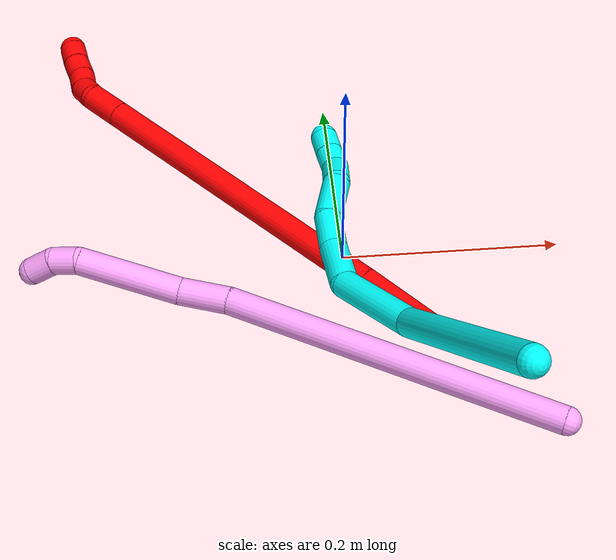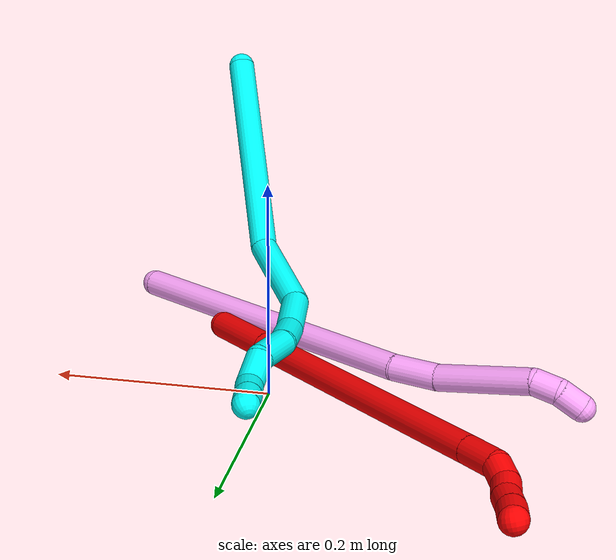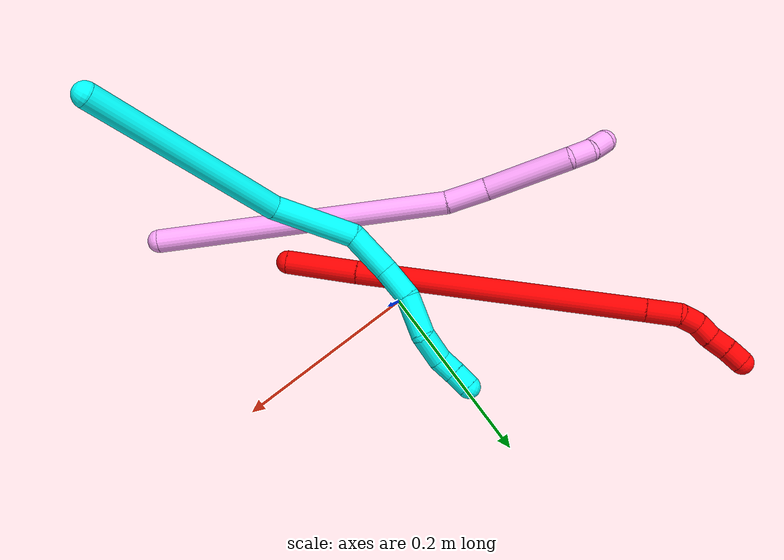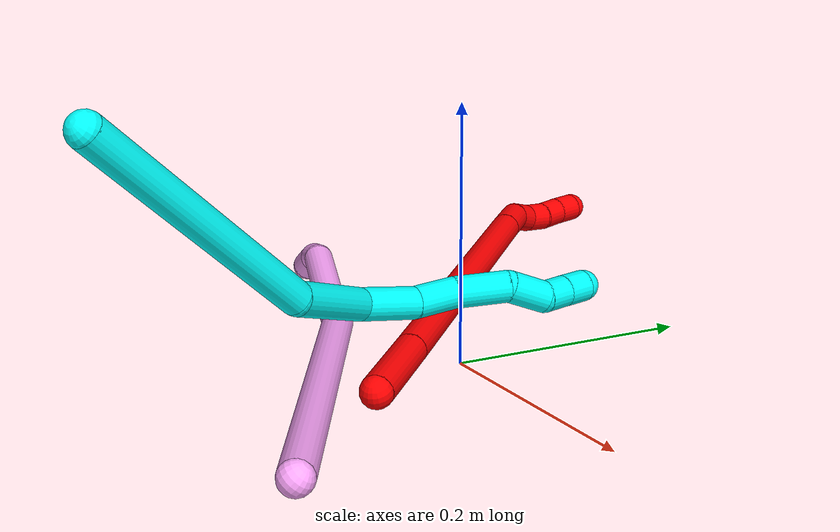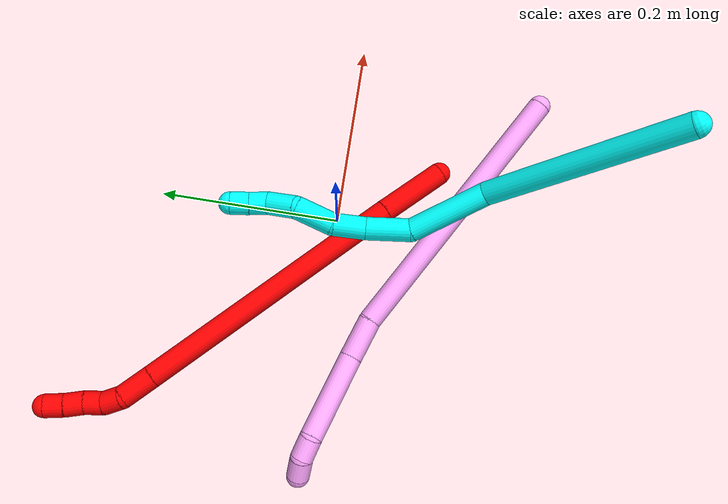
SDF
<sdf version="1.7">
 <world name="default">
  <model name="2">
   <static>0</static>
   <link name="2">
    <collision name="collision-cylinder-e_1_1_4">
     <pose>-0.014885 0.032686 0.012403 -1.20812 -0.402538 0.279772</pose>
     <geometry><cylinder><radius>0.0125</radius><length>0.075994</length></cylinder></geometry>
     <surface>
      <friction><ode><mu>1.16</mu><mu2>1.16</mu2><slip1>0</slip1><slip2>0</slip2></ode></friction>
      <contact><ode><kp>1e+06</kp><kd>1</kd><max_vel>0</max_vel><min_depth>0.001</min_depth></ode></contact>
     </surface>
    </collision>
    <visual name="visual-cylinder-e_1_1_4">
     <pose>-0.014885 0.032686 0.012403 -1.20812 -0.402538 0.279772</pose>
     <geometry><cylinder><radius>0.0125</radius><length>0.075994</length></cylinder></geometry>
     <material><ambient>1 0 0 1</ambient></material>
    </visual>
    <collision name="collision-cylinder-e_2_4_5">
     <pose>-0.086774 0.196904 0.076241 -1.19803 -0.38362 0.263617</pose>
     <geometry><cylinder><radius>0.0125</radius><length>0.304603</length></cylinder></geometry>
     <surface>
      <friction><ode><mu>1.16</mu><mu2>1.16</mu2><slip1>0</slip1><slip2>0</slip2></ode></friction>
      <contact><ode><kp>1e+06</kp><kd>1</kd><max_vel>0</max_vel><min_depth>0.001</min_depth></ode></contact>
     </surface>
    </collision>
    <visual name="visual-cylinder-e_2_4_5">
     <pose>-0.086774 0.196904 0.076241 -1.19803 -0.38362 0.263617</pose>
     <geometry><cylinder><radius>0.0125</radius><length>0.304603</length></cylinder></geometry>
     <material><ambient>1 0 0 1</ambient></material>
    </visual>
    <collision name="collision-cylinder-e_3_5_6">
     <pose>-0.1506 0.34389 0.133885 -1.1888 -0.388765 0.264591</pose>
     <geometry><cylinder><radius>0.0125</radius><length>0.035995</length></cylinder></geometry>
     <surface>
      <friction><ode><mu>1.16</mu><mu2>1.16</mu2><slip1>0</slip1><slip2>0</slip2></ode></friction>
      <contact><ode><kp>1e+06</kp><kd>1</kd><max_vel>0</max_vel><min_depth>0.001</min_depth></ode></contact>
     </surface>
    </collision>
    <visual name="visual-cylinder-e_3_5_6">
     <pose>-0.1506 0.34389 0.133885 -1.1888 -0.388765 0.264591</pose>
     <geometry><cylinder><radius>0.0125</radius><length>0.035995</length></cylinder></geometry>
     <material><ambient>1 0 0 1</ambient></material>
    </visual>
    <collision name="collision-cylinder-e_4_6_7">
     <pose>-0.16351 0.365348 0.146732 -0.735179 -0.597365 0.236033</pose>
     <geometry><cylinder><radius>0.0125</radius><length>0.02165</length></cylinder></geometry>
     <surface>
      <friction><ode><mu>1.16</mu><mu2>1.16</mu2><slip1>0</slip1><slip2>0</slip2></ode></friction>
      <contact><ode><kp>1e+06</kp><kd>1</kd><max_vel>0</max_vel><min_depth>0.001</min_depth></ode></contact>
     </surface>
    </collision>
    <visual name="visual-cylinder-e_4_6_7">
     <pose>-0.16351 0.365348 0.146732 -0.735179 -0.597365 0.236033</pose>
     <geometry><cylinder><radius>0.0125</radius><length>0.02165</length></cylinder></geometry>
     <material><ambient>1 0 0 1</ambient></material>
    </visual>
    <collision name="collision-cylinder-e_5_7_8">
     <pose>-0.17803 0.375352 0.157298 -0.794622 -0.983954 0.442422</pose>
     <geometry><cylinder><radius>0.0125</radius><length>0.020251</length></cylinder></geometry>
     <surface>
      <friction><ode><mu>1.16</mu><mu2>1.16</mu2><slip1>0</slip1><slip2>0</slip2></ode></friction>
      <contact><ode><kp>1e+06</kp><kd>1</kd><max_vel>0</max_vel><min_depth>0.001</min_depth></ode></contact>
     </surface>
    </collision>
    <visual name="visual-cylinder-e_5_7_8">
     <pose>-0.17803 0.375352 0.157298 -0.794622 -0.983954 0.442422</pose>
     <geometry><cylinder><radius>0.0125</radius><length>0.020251</length></cylinder></geometry>
     <material><ambient>1 0 0 1</ambient></material>
    </visual>
    <collision name="collision-cylinder-e_6_8_9">
     <pose>-0.194522 0.385255 0.164403 -1.07697 -0.877053 0.546307</pose>
     <geometry><cylinder><radius>0.0125</radius><length>0.020966</length></cylinder></geometry>
     <surface>
      <friction><ode><mu>1.16</mu><mu2>1.16</mu2><slip1>0</slip1><slip2>0</slip2></ode></friction>
      <contact><ode><kp>1e+06</kp><kd>1</kd><max_vel>0</max_vel><min_depth>0.001</min_depth></ode></contact>
     </surface>
    </collision>
    <visual name="visual-cylinder-e_6_8_9">
     <pose>-0.194522 0.385255 0.164403 -1.07697 -0.877053 0.546307</pose>
     <geometry><cylinder><radius>0.0125</radius><length>0.020966</length></cylinder></geometry>
     <material><ambient>1 0 0 1</ambient></material>
    </visual>
    <collision name="collision-cylinder-e_7_9_2">
     <pose>-0.211078 0.396095 0.170568 -1.0266 -0.974152 0.580267</pose>
     <geometry><cylinder><radius>0.0125</radius><length>0.020541</length></cylinder></geometry>
     <surface>
      <friction><ode><mu>1.16</mu><mu2>1.16</mu2><slip1>0</slip1><slip2>0</slip2></ode></friction>
      <contact><ode><kp>1e+06</kp><kd>1</kd><max_vel>0</max_vel><min_depth>0.001</min_depth></ode></contact>
     </surface>
    </collision>
    <visual name="visual-cylinder-e_7_9_2">
     <pose>-0.211078 0.396095 0.170568 -1.0266 -0.974152 0.580267</pose>
     <geometry><cylinder><radius>0.0125</radius><length>0.020541</length></cylinder></geometry>
     <material><ambient>1 0 0 1</ambient></material>
    </visual>
    <collision name="collision-sphere-2">
     <pose>-0.219574 0.401032 0.173556 0 -0 0</pose>
     <geometry><sphere><radius>0.0125</radius></sphere></geometry>
     <surface>
      <friction><ode><mu>1.16</mu><mu2>1.16</mu2><slip1>0</slip1><slip2>0</slip2></ode></friction>
      <contact><ode><kp>1e+06</kp><kd>1</kd><max_vel>0</max_vel><min_depth>0.001</min_depth></ode></contact>
     </surface>
    </collision>
    <visual name="visual-sphere-2">
     <pose>-0.219574 0.401032 0.173556 0 -0 0</pose>
     <geometry><sphere><radius>0.0125</radius></sphere></geometry>
     <material><ambient>1 0 0 1</ambient></material>
    </visual>
    <collision name="collision-sphere-9">
     <pose>-0.202582 0.391157 0.16758 0 -0 0</pose>
     <geometry><sphere><radius>0.0125</radius></sphere></geometry>
     <surface>
      <friction><ode><mu>1.16</mu><mu2>1.16</mu2><slip1>0</slip1><slip2>0</slip2></ode></friction>
      <contact><ode><kp>1e+06</kp><kd>1</kd><max_vel>0</max_vel><min_depth>0.001</min_depth></ode></contact>
     </surface>
    </collision>
    <visual name="visual-sphere-9">
     <pose>-0.202582 0.391157 0.16758 0 -0 0</pose>
     <geometry><sphere><radius>0.0125</radius></sphere></geometry>
     <material><ambient>1 0 0 1</ambient></material>
    </visual>
    <collision name="collision-sphere-4">
     <pose>-0.029771 0.065371 0.024806 0 -0 0</pose>
     <geometry><sphere><radius>0.0125</radius></sphere></geometry>
     <surface>
      <friction><ode><mu>1.16</mu><mu2>1.16</mu2><slip1>0</slip1><slip2>0</slip2></ode></friction>
      <contact><ode><kp>1e+06</kp><kd>1</kd><max_vel>0</max_vel><min_depth>0.001</min_depth></ode></contact>
     </surface>
    </collision>
    <visual name="visual-sphere-4">
     <pose>-0.029771 0.065371 0.024806 0 -0 0</pose>
     <geometry><sphere><radius>0.0125</radius></sphere></geometry>
     <material><ambient>1 0 0 1</ambient></material>
    </visual>
    <collision name="collision-sphere-1">
     <geometry><sphere><radius>0.0125</radius></sphere></geometry>
     <surface>
      <friction><ode><mu>1.16</mu><mu2>1.16</mu2><slip1>0</slip1><slip2>0</slip2></ode></friction>
      <contact><ode><kp>1e+06</kp><kd>1</kd><max_vel>0</max_vel><min_depth>0.001</min_depth></ode></contact>
     </surface>
    </collision>
    <visual name="visual-sphere-1">
     <geometry><sphere><radius>0.0125</radius></sphere></geometry>
     <material><ambient>1 0 0 1</ambient></material>
    </visual>
    <collision name="collision-sphere-8">
     <pose>-0.186462 0.379353 0.161226 0 -0 0</pose>
     <geometry><sphere><radius>0.0125</radius></sphere></geometry>
     <surface>
      <friction><ode><mu>1.16</mu><mu2>1.16</mu2><slip1>0</slip1><slip2>0</slip2></ode></friction>
      <contact><ode><kp>1e+06</kp><kd>1</kd><max_vel>0</max_vel><min_depth>0.001</min_depth></ode></contact>
     </surface>
    </collision>
    <visual name="visual-sphere-8">
     <pose>-0.186462 0.379353 0.161226 0 -0 0</pose>
     <geometry><sphere><radius>0.0125</radius></sphere></geometry>
     <material><ambient>1 0 0 1</ambient></material>
    </visual>
    <collision name="collision-sphere-5">
     <pose>-0.143778 0.328436 0.127676 0 -0 0</pose>
     <geometry><sphere><radius>0.0125</radius></sphere></geometry>
     <surface>
      <friction><ode><mu>1.16</mu><mu2>1.16</mu2><slip1>0</slip1><slip2>0</slip2></ode></friction>
      <contact><ode><kp>1e+06</kp><kd>1</kd><max_vel>0</max_vel><min_depth>0.001</min_depth></ode></contact>
     </surface>
    </collision>
    <visual name="visual-sphere-5">
     <pose>-0.143778 0.328436 0.127676 0 -0 0</pose>
     <geometry><sphere><radius>0.0125</radius></sphere></geometry>
     <material><ambient>1 0 0 1</ambient></material>
    </visual>
    <collision name="collision-sphere-6">
     <pose>-0.157422 0.359345 0.140093 0 -0 0</pose>
     <geometry><sphere><radius>0.0125</radius></sphere></geometry>
     <surface>
      <friction><ode><mu>1.16</mu><mu2>1.16</mu2><slip1>0</slip1><slip2>0</slip2></ode></friction>
      <contact><ode><kp>1e+06</kp><kd>1</kd><max_vel>0</max_vel><min_depth>0.001</min_depth></ode></contact>
     </surface>
    </collision>
    <visual name="visual-sphere-6">
     <pose>-0.157422 0.359345 0.140093 0 -0 0</pose>
     <geometry><sphere><radius>0.0125</radius></sphere></geometry>
     <material><ambient>1 0 0 1</ambient></material>
    </visual>
    <collision name="collision-sphere-7">
     <pose>-0.169599 0.371351 0.15337 0 -0 0</pose>
     <geometry><sphere><radius>0.0125</radius></sphere></geometry>
     <surface>
      <friction><ode><mu>1.16</mu><mu2>1.16</mu2><slip1>0</slip1><slip2>0</slip2></ode></friction>
      <contact><ode><kp>1e+06</kp><kd>1</kd><max_vel>0</max_vel><min_depth>0.001</min_depth></ode></contact>
     </surface>
    </collision>
    <visual name="visual-sphere-7">
     <pose>-0.169599 0.371351 0.15337 0 -0 0</pose>
     <geometry><sphere><radius>0.0125</radius></sphere></geometry>
     <material><ambient>1 0 0 1</ambient></material>
    </visual>
    <inertial>
     <pose>-0.097086 0.213129 0.084595 0 -0 0</pose>
     <mass>0.5</mass>
     <inertia>
      <ixx>0.00273</ixx>
      <ixy>0</ixy>
      <ixz>0</ixz>
      <iyy>0.001689</iyy>
      <iyz>0</iyz>
      <izz>-0.001164</izz>
     </inertia>
    </inertial>
   </link>
   <pose>0.068073 -0.104829 0.017121 2.76774 0.199733 -1.97361</pose>
  </model>
  <model name="3">
   <static>0</static>
   <link name="3">
    <collision name="collision-cylinder-e_1_1_4">
     <pose>0.018378 -0.004566 -0.103987 3.09771 0.174766 2.65075</pose>
     <geometry><cylinder><radius>0.0125</radius><length>0.211395</length></cylinder></geometry>
     <surface>
      <friction><ode><mu>1.16</mu><mu2>1.16</mu2><slip1>0</slip1><slip2>0</slip2></ode></friction>
      <contact><ode><kp>1e+06</kp><kd>1</kd><max_vel>0</max_vel><min_depth>0.001</min_depth></ode></contact>
     </surface>
    </collision>
    <visual name="visual-cylinder-e_1_1_4">
     <pose>0.018378 -0.004566 -0.103987 3.09771 0.174766 2.65075</pose>
     <geometry><cylinder><radius>0.0125</radius><length>0.211395</length></cylinder></geometry>
     <material><ambient>0.003922 1 0.996078 1</ambient></material>
    </visual>
    <collision name="collision-cylinder-e_2_4_5">
     <pose>0.025772 -0.007312 -0.249645 -3.09795 -0.257524 2.80757</pose>
     <geometry><cylinder><radius>0.0125</radius><length>0.086264</length></cylinder></geometry>
     <surface>
      <friction><ode><mu>1.16</mu><mu2>1.16</mu2><slip1>0</slip1><slip2>0</slip2></ode></friction>
      <contact><ode><kp>1e+06</kp><kd>1</kd><max_vel>0</max_vel><min_depth>0.001</min_depth></ode></contact>
     </surface>
    </collision>
    <visual name="visual-cylinder-e_2_4_5">
     <pose>0.025772 -0.007312 -0.249645 -3.09795 -0.257524 2.80757</pose>
     <geometry><cylinder><radius>0.0125</radius><length>0.086264</length></cylinder></geometry>
     <material><ambient>0.003922 1 0.996078 1</ambient></material>
    </visual>
    <collision name="collision-cylinder-e_3_5_6">
     <pose>0.013323 0.006406 -0.312446 -2.62883 -0.060268 0.228964</pose>
     <geometry><cylinder><radius>0.0125</radius><length>0.04859</length></cylinder></geometry>
     <surface>
      <friction><ode><mu>1.16</mu><mu2>1.16</mu2><slip1>0</slip1><slip2>0</slip2></ode></friction>
      <contact><ode><kp>1e+06</kp><kd>1</kd><max_vel>0</max_vel><min_depth>0.001</min_depth></ode></contact>
     </surface>
    </collision>
    <visual name="visual-cylinder-e_3_5_6">
     <pose>0.013323 0.006406 -0.312446 -2.62883 -0.060268 0.228964</pose>
     <geometry><cylinder><radius>0.0125</radius><length>0.04859</length></cylinder></geometry>
     <material><ambient>0.003922 1 0.996078 1</ambient></material>
    </visual>
    <collision name="collision-cylinder-e_4_6_7">
     <pose>0.008764 0.029755 -0.346906 -2.43171 -0.174397 0.463263</pose>
     <geometry><cylinder><radius>0.0125</radius><length>0.035686</length></cylinder></geometry>
     <surface>
      <friction><ode><mu>1.16</mu><mu2>1.16</mu2><slip1>0</slip1><slip2>0</slip2></ode></friction>
      <contact><ode><kp>1e+06</kp><kd>1</kd><max_vel>0</max_vel><min_depth>0.001</min_depth></ode></contact>
     </surface>
    </collision>
    <visual name="visual-cylinder-e_4_6_7">
     <pose>0.008764 0.029755 -0.346906 -2.43171 -0.174397 0.463263</pose>
     <geometry><cylinder><radius>0.0125</radius><length>0.035686</length></cylinder></geometry>
     <material><ambient>0.003922 1 0.996078 1</ambient></material>
    </visual>
    <collision name="collision-cylinder-e_5_7_8">
     <pose>0.007353 0.057984 -0.373338 -2.23394 0.078978 -0.161644</pose>
     <geometry><cylinder><radius>0.0125</radius><length>0.042708</length></cylinder></geometry>
     <surface>
      <friction><ode><mu>1.16</mu><mu2>1.16</mu2><slip1>0</slip1><slip2>0</slip2></ode></friction>
      <contact><ode><kp>1e+06</kp><kd>1</kd><max_vel>0</max_vel><min_depth>0.001</min_depth></ode></contact>
     </surface>
    </collision>
    <visual name="visual-cylinder-e_5_7_8">
     <pose>0.007353 0.057984 -0.373338 -2.23394 0.078978 -0.161644</pose>
     <geometry><cylinder><radius>0.0125</radius><length>0.042708</length></cylinder></geometry>
     <material><ambient>0.003922 1 0.996078 1</ambient></material>
    </visual>
    <collision name="collision-cylinder-e_6_8_9">
     <pose>0.012637 0.081865 -0.401336 -2.69642 0.214783 -0.889038</pose>
     <geometry><cylinder><radius>0.0125</radius><length>0.03378</length></cylinder></geometry>
     <surface>
      <friction><ode><mu>1.16</mu><mu2>1.16</mu2><slip1>0</slip1><slip2>0</slip2></ode></friction>
      <contact><ode><kp>1e+06</kp><kd>1</kd><max_vel>0</max_vel><min_depth>0.001</min_depth></ode></contact>
     </surface>
    </collision>
    <visual name="visual-cylinder-e_6_8_9">
     <pose>0.012637 0.081865 -0.401336 -2.69642 0.214783 -0.889038</pose>
     <geometry><cylinder><radius>0.0125</radius><length>0.03378</length></cylinder></geometry>
     <material><ambient>0.003922 1 0.996078 1</ambient></material>
    </visual>
    <collision name="collision-cylinder-e_7_9_10">
     <pose>0.01362 0.094557 -0.424611 -2.55372 -0.254288 0.799176</pose>
     <geometry><cylinder><radius>0.0125</radius><length>0.020812</length></cylinder></geometry>
     <surface>
      <friction><ode><mu>1.16</mu><mu2>1.16</mu2><slip1>0</slip1><slip2>0</slip2></ode></friction>
      <contact><ode><kp>1e+06</kp><kd>1</kd><max_vel>0</max_vel><min_depth>0.001</min_depth></ode></contact>
     </surface>
    </collision>
    <visual name="visual-cylinder-e_7_9_10">
     <pose>0.01362 0.094557 -0.424611 -2.55372 -0.254288 0.799176</pose>
     <geometry><cylinder><radius>0.0125</radius><length>0.020812</length></cylinder></geometry>
     <material><ambient>0.003922 1 0.996078 1</ambient></material>
    </visual>
    <collision name="collision-cylinder-e_8_10_2">
     <pose>0.008661 0.106015 -0.441227 -2.52216 -0.227385 0.685458</pose>
     <geometry><cylinder><radius>0.0125</radius><length>0.020765</length></cylinder></geometry>
     <surface>
      <friction><ode><mu>1.16</mu><mu2>1.16</mu2><slip1>0</slip1><slip2>0</slip2></ode></friction>
      <contact><ode><kp>1e+06</kp><kd>1</kd><max_vel>0</max_vel><min_depth>0.001</min_depth></ode></contact>
     </surface>
    </collision>
    <visual name="visual-cylinder-e_8_10_2">
     <pose>0.008661 0.106015 -0.441227 -2.52216 -0.227385 0.685458</pose>
     <geometry><cylinder><radius>0.0125</radius><length>0.020765</length></cylinder></geometry>
     <material><ambient>0.003922 1 0.996078 1</ambient></material>
    </visual>
    <collision name="collision-sphere-2">
     <pose>0.006321 0.111887 -0.449463 0 -0 0</pose>
     <geometry><sphere><radius>0.0125</radius></sphere></geometry>
     <surface>
      <friction><ode><mu>1.16</mu><mu2>1.16</mu2><slip1>0</slip1><slip2>0</slip2></ode></friction>
      <contact><ode><kp>1e+06</kp><kd>1</kd><max_vel>0</max_vel><min_depth>0.001</min_depth></ode></contact>
     </surface>
    </collision>
    <visual name="visual-sphere-2">
     <pose>0.006321 0.111887 -0.449463 0 -0 0</pose>
     <geometry><sphere><radius>0.0125</radius></sphere></geometry>
     <material><ambient>0.003922 1 0.996078 1</ambient></material>
    </visual>
    <collision name="collision-sphere-10">
     <pose>0.011002 0.100142 -0.432991 0 -0 0</pose>
     <geometry><sphere><radius>0.0125</radius></sphere></geometry>
     <surface>
      <friction><ode><mu>1.16</mu><mu2>1.16</mu2><slip1>0</slip1><slip2>0</slip2></ode></friction>
      <contact><ode><kp>1e+06</kp><kd>1</kd><max_vel>0</max_vel><min_depth>0.001</min_depth></ode></contact>
     </surface>
    </collision>
    <visual name="visual-sphere-10">
     <pose>0.011002 0.100142 -0.432991 0 -0 0</pose>
     <geometry><sphere><radius>0.0125</radius></sphere></geometry>
     <material><ambient>0.003922 1 0.996078 1</ambient></material>
    </visual>
    <collision name="collision-sphere-9">
     <pose>0.016237 0.088971 -0.41623 0 -0 0</pose>
     <geometry><sphere><radius>0.0125</radius></sphere></geometry>
     <surface>
      <friction><ode><mu>1.16</mu><mu2>1.16</mu2><slip1>0</slip1><slip2>0</slip2></ode></friction>
      <contact><ode><kp>1e+06</kp><kd>1</kd><max_vel>0</max_vel><min_depth>0.001</min_depth></ode></contact>
     </surface>
    </collision>
    <visual name="visual-sphere-9">
     <pose>0.016237 0.088971 -0.41623 0 -0 0</pose>
     <geometry><sphere><radius>0.0125</radius></sphere></geometry>
     <material><ambient>0.003922 1 0.996078 1</ambient></material>
    </visual>
    <collision name="collision-sphere-4">
     <pose>0.036757 -0.009132 -0.207975 0 -0 0</pose>
     <geometry><sphere><radius>0.0125</radius></sphere></geometry>
     <surface>
      <friction><ode><mu>1.16</mu><mu2>1.16</mu2><slip1>0</slip1><slip2>0</slip2></ode></friction>
      <contact><ode><kp>1e+06</kp><kd>1</kd><max_vel>0</max_vel><min_depth>0.001</min_depth></ode></contact>
     </surface>
    </collision>
    <visual name="visual-sphere-4">
     <pose>0.036757 -0.009132 -0.207975 0 -0 0</pose>
     <geometry><sphere><radius>0.0125</radius></sphere></geometry>
     <material><ambient>0.003922 1 0.996078 1</ambient></material>
    </visual>
    <collision name="collision-sphere-1">
     <geometry><sphere><radius>0.0125</radius></sphere></geometry>
     <surface>
      <friction><ode><mu>1.16</mu><mu2>1.16</mu2><slip1>0</slip1><slip2>0</slip2></ode></friction>
      <contact><ode><kp>1e+06</kp><kd>1</kd><max_vel>0</max_vel><min_depth>0.001</min_depth></ode></contact>
     </surface>
    </collision>
    <visual name="visual-sphere-1">
     <geometry><sphere><radius>0.0125</radius></sphere></geometry>
     <material><ambient>0.003922 1 0.996078 1</ambient></material>
    </visual>
    <collision name="collision-sphere-8">
     <pose>0.009038 0.074759 -0.386443 0 -0 0</pose>
     <geometry><sphere><radius>0.0125</radius></sphere></geometry>
     <surface>
      <friction><ode><mu>1.16</mu><mu2>1.16</mu2><slip1>0</slip1><slip2>0</slip2></ode></friction>
      <contact><ode><kp>1e+06</kp><kd>1</kd><max_vel>0</max_vel><min_depth>0.001</min_depth></ode></contact>
     </surface>
    </collision>
    <visual name="visual-sphere-8">
     <pose>0.009038 0.074759 -0.386443 0 -0 0</pose>
     <geometry><sphere><radius>0.0125</radius></sphere></geometry>
     <material><ambient>0.003922 1 0.996078 1</ambient></material>
    </visual>
    <collision name="collision-sphere-5">
     <pose>0.014787 -0.005492 -0.291314 0 -0 0</pose>
     <geometry><sphere><radius>0.0125</radius></sphere></geometry>
     <surface>
      <friction><ode><mu>1.16</mu><mu2>1.16</mu2><slip1>0</slip1><slip2>0</slip2></ode></friction>
      <contact><ode><kp>1e+06</kp><kd>1</kd><max_vel>0</max_vel><min_depth>0.001</min_depth></ode></contact>
     </surface>
    </collision>
    <visual name="visual-sphere-5">
     <pose>0.014787 -0.005492 -0.291314 0 -0 0</pose>
     <geometry><sphere><radius>0.0125</radius></sphere></geometry>
     <material><ambient>0.003922 1 0.996078 1</ambient></material>
    </visual>
    <collision name="collision-sphere-6">
     <pose>0.01186 0.018303 -0.333579 0 -0 0</pose>
     <geometry><sphere><radius>0.0125</radius></sphere></geometry>
     <surface>
      <friction><ode><mu>1.16</mu><mu2>1.16</mu2><slip1>0</slip1><slip2>0</slip2></ode></friction>
      <contact><ode><kp>1e+06</kp><kd>1</kd><max_vel>0</max_vel><min_depth>0.001</min_depth></ode></contact>
     </surface>
    </collision>
    <visual name="visual-sphere-6">
     <pose>0.01186 0.018303 -0.333579 0 -0 0</pose>
     <geometry><sphere><radius>0.0125</radius></sphere></geometry>
     <material><ambient>0.003922 1 0.996078 1</ambient></material>
    </visual>
    <collision name="collision-sphere-7">
     <pose>0.005668 0.041208 -0.360234 0 -0 0</pose>
     <geometry><sphere><radius>0.0125</radius></sphere></geometry>
     <surface>
      <friction><ode><mu>1.16</mu><mu2>1.16</mu2><slip1>0</slip1><slip2>0</slip2></ode></friction>
      <contact><ode><kp>1e+06</kp><kd>1</kd><max_vel>0</max_vel><min_depth>0.001</min_depth></ode></contact>
     </surface>
    </collision>
    <visual name="visual-sphere-7">
     <pose>0.005668 0.041208 -0.360234 0 -0 0</pose>
     <geometry><sphere><radius>0.0125</radius></sphere></geometry>
     <material><ambient>0.003922 1 0.996078 1</ambient></material>
    </visual>
    <inertial>
     <pose>0.016545 0.018377 -0.23716 0 -0 0</pose>
     <mass>0.5</mass>
     <inertia>
      <ixx>-0.000324</ixx>
      <ixy>0</ixy>
      <ixz>0</ixz>
      <iyy>0.001134</iyy>
      <iyz>0</iyz>
      <izz>-0.000145</izz>
     </inertia>
    </inertial>
   </link>
   <pose>0.095756 -0.30205 0.217264 0.811108 0.743928 -0.116192</pose>
  </model>
  <model name="4">
   <static>0</static>
   <link name="4">
    <collision name="collision-cylinder-e_1_1_4">
     <pose>-0.132791 0.078494 -0.02087 -1.83066 -1.02186 1.25998</pose>
     <geometry><cylinder><radius>0.0125</radius><length>0.311322</length></cylinder></geometry>
     <surface>
      <friction><ode><mu>1.16</mu><mu2>1.16</mu2><slip1>0</slip1><slip2>0</slip2></ode></friction>
      <contact><ode><kp>1e+06</kp><kd>1</kd><max_vel>0</max_vel><min_depth>0.001</min_depth></ode></contact>
     </surface>
    </collision>
    <visual name="visual-cylinder-e_1_1_4">
     <pose>-0.132791 0.078494 -0.02087 -1.83066 -1.02186 1.25998</pose>
     <geometry><cylinder><radius>0.0125</radius><length>0.311322</length></cylinder></geometry>
     <material><ambient>1 0.65098 0.996078 1</ambient></material>
    </visual>
    <collision name="collision-cylinder-e_2_4_5">
     <pose>-0.286019 0.165156 -0.047457 -2.18148 -1.1169 1.75207</pose>
     <geometry><cylinder><radius>0.0125</radius><length>0.045478</length></cylinder></geometry>
     <surface>
      <friction><ode><mu>1.16</mu><mu2>1.16</mu2><slip1>0</slip1><slip2>0</slip2></ode></friction>
      <contact><ode><kp>1e+06</kp><kd>1</kd><max_vel>0</max_vel><min_depth>0.001</min_depth></ode></contact>
     </surface>
    </collision>
    <visual name="visual-cylinder-e_2_4_5">
     <pose>-0.286019 0.165156 -0.047457 -2.18148 -1.1169 1.75207</pose>
     <geometry><cylinder><radius>0.0125</radius><length>0.045478</length></cylinder></geometry>
     <material><ambient>1 0.65098 0.996078 1</ambient></material>
    </visual>
    <collision name="collision-cylinder-e_3_5_6">
     <pose>-0.351855 0.185174 -0.059103 -2.03471 -1.28684 1.76325</pose>
     <geometry><cylinder><radius>0.0125</radius><length>0.094587</length></cylinder></geometry>
     <surface>
      <friction><ode><mu>1.16</mu><mu2>1.16</mu2><slip1>0</slip1><slip2>0</slip2></ode></friction>
      <contact><ode><kp>1e+06</kp><kd>1</kd><max_vel>0</max_vel><min_depth>0.001</min_depth></ode></contact>
     </surface>
    </collision>
    <visual name="visual-cylinder-e_3_5_6">
     <pose>-0.351855 0.185174 -0.059103 -2.03471 -1.28684 1.76325</pose>
     <geometry><cylinder><radius>0.0125</radius><length>0.094587</length></cylinder></geometry>
     <material><ambient>1 0.65098 0.996078 1</ambient></material>
    </visual>
    <collision name="collision-cylinder-e_4_6_7">
     <pose>-0.407006 0.202124 -0.070306 -2.37302 -0.92569 1.77948</pose>
     <geometry><cylinder><radius>0.0125</radius><length>0.024407</length></cylinder></geometry>
     <surface>
      <friction><ode><mu>1.16</mu><mu2>1.16</mu2><slip1>0</slip1><slip2>0</slip2></ode></friction>
      <contact><ode><kp>1e+06</kp><kd>1</kd><max_vel>0</max_vel><min_depth>0.001</min_depth></ode></contact>
     </surface>
    </collision>
    <visual name="visual-cylinder-e_4_6_7">
     <pose>-0.407006 0.202124 -0.070306 -2.37302 -0.92569 1.77948</pose>
     <geometry><cylinder><radius>0.0125</radius><length>0.024407</length></cylinder></geometry>
     <material><ambient>1 0.65098 0.996078 1</ambient></material>
    </visual>
    <collision name="collision-cylinder-e_5_7_2">
     <pose>-0.423182 0.212163 -0.084571 -2.63917 -0.55961 1.68358</pose>
     <geometry><cylinder><radius>0.0125</radius><length>0.024206</length></cylinder></geometry>
     <surface>
      <friction><ode><mu>1.16</mu><mu2>1.16</mu2><slip1>0</slip1><slip2>0</slip2></ode></friction>
      <contact><ode><kp>1e+06</kp><kd>1</kd><max_vel>0</max_vel><min_depth>0.001</min_depth></ode></contact>
     </surface>
    </collision>
    <visual name="visual-cylinder-e_5_7_2">
     <pose>-0.423182 0.212163 -0.084571 -2.63917 -0.55961 1.68358</pose>
     <geometry><cylinder><radius>0.0125</radius><length>0.024206</length></cylinder></geometry>
     <material><ambient>1 0.65098 0.996078 1</ambient></material>
    </visual>
    <collision name="collision-sphere-2">
     <pose>-0.429607 0.217103 -0.09356 0 -0 0</pose>
     <geometry><sphere><radius>0.0125</radius></sphere></geometry>
     <surface>
      <friction><ode><mu>1.16</mu><mu2>1.16</mu2><slip1>0</slip1><slip2>0</slip2></ode></friction>
      <contact><ode><kp>1e+06</kp><kd>1</kd><max_vel>0</max_vel><min_depth>0.001</min_depth></ode></contact>
     </surface>
    </collision>
    <visual name="visual-sphere-2">
     <pose>-0.429607 0.217103 -0.09356 0 -0 0</pose>
     <geometry><sphere><radius>0.0125</radius></sphere></geometry>
     <material><ambient>1 0.65098 0.996078 1</ambient></material>
    </visual>
    <collision name="collision-sphere-7">
     <pose>-0.416757 0.207224 -0.075582 0 -0 0</pose>
     <geometry><sphere><radius>0.0125</radius></sphere></geometry>
     <surface>
      <friction><ode><mu>1.16</mu><mu2>1.16</mu2><slip1>0</slip1><slip2>0</slip2></ode></friction>
      <contact><ode><kp>1e+06</kp><kd>1</kd><max_vel>0</max_vel><min_depth>0.001</min_depth></ode></contact>
     </surface>
    </collision>
    <visual name="visual-sphere-7">
     <pose>-0.416757 0.207224 -0.075582 0 -0 0</pose>
     <geometry><sphere><radius>0.0125</radius></sphere></geometry>
     <material><ambient>1 0.65098 0.996078 1</ambient></material>
    </visual>
    <collision name="collision-sphere-6">
     <pose>-0.397254 0.197023 -0.065031 0 -0 0</pose>
     <geometry><sphere><radius>0.0125</radius></sphere></geometry>
     <surface>
      <friction><ode><mu>1.16</mu><mu2>1.16</mu2><slip1>0</slip1><slip2>0</slip2></ode></friction>
      <contact><ode><kp>1e+06</kp><kd>1</kd><max_vel>0</max_vel><min_depth>0.001</min_depth></ode></contact>
     </surface>
    </collision>
    <visual name="visual-sphere-6">
     <pose>-0.397254 0.197023 -0.065031 0 -0 0</pose>
     <geometry><sphere><radius>0.0125</radius></sphere></geometry>
     <material><ambient>1 0.65098 0.996078 1</ambient></material>
    </visual>
    <collision name="collision-sphere-5">
     <pose>-0.306455 0.173324 -0.053174 0 -0 0</pose>
     <geometry><sphere><radius>0.0125</radius></sphere></geometry>
     <surface>
      <friction><ode><mu>1.16</mu><mu2>1.16</mu2><slip1>0</slip1><slip2>0</slip2></ode></friction>
      <contact><ode><kp>1e+06</kp><kd>1</kd><max_vel>0</max_vel><min_depth>0.001</min_depth></ode></contact>
     </surface>
    </collision>
    <visual name="visual-sphere-5">
     <pose>-0.306455 0.173324 -0.053174 0 -0 0</pose>
     <geometry><sphere><radius>0.0125</radius></sphere></geometry>
     <material><ambient>1 0.65098 0.996078 1</ambient></material>
    </visual>
    <collision name="collision-sphere-1">
     <geometry><sphere><radius>0.0125</radius></sphere></geometry>
     <surface>
      <friction><ode><mu>1.16</mu><mu2>1.16</mu2><slip1>0</slip1><slip2>0</slip2></ode></friction>
      <contact><ode><kp>1e+06</kp><kd>1</kd><max_vel>0</max_vel><min_depth>0.001</min_depth></ode></contact>
     </surface>
    </collision>
    <visual name="visual-sphere-1">
     <geometry><sphere><radius>0.0125</radius></sphere></geometry>
     <material><ambient>1 0.65098 0.996078 1</ambient></material>
    </visual>
    <collision name="collision-sphere-4">
     <pose>-0.265582 0.156988 -0.041739 0 -0 0</pose>
     <geometry><sphere><radius>0.0125</radius></sphere></geometry>
     <surface>
      <friction><ode><mu>1.16</mu><mu2>1.16</mu2><slip1>0</slip1><slip2>0</slip2></ode></friction>
      <contact><ode><kp>1e+06</kp><kd>1</kd><max_vel>0</max_vel><min_depth>0.001</min_depth></ode></contact>
     </surface>
    </collision>
    <visual name="visual-sphere-4">
     <pose>-0.265582 0.156988 -0.041739 0 -0 0</pose>
     <geometry><sphere><radius>0.0125</radius></sphere></geometry>
     <material><ambient>1 0.65098 0.996078 1</ambient></material>
    </visual>
    <inertial>
     <pose>-0.215613 0.119063 -0.036018 0 -0 0</pose>
     <mass>0.5</mass>
     <inertia>
      <ixx>0.001647</ixx>
      <ixy>0</ixy>
      <ixz>0</ixz>
      <iyy>0.003164</iyy>
      <iyz>0</iyz>
      <izz>0.000933</izz>
     </inertia>
    </inertial>
   </link>
   <pose>0.165171 -0.207075 0.011496 -0.612498 0.440434 -0.173776</pose>
  </model>
 </world>
</sdf>
